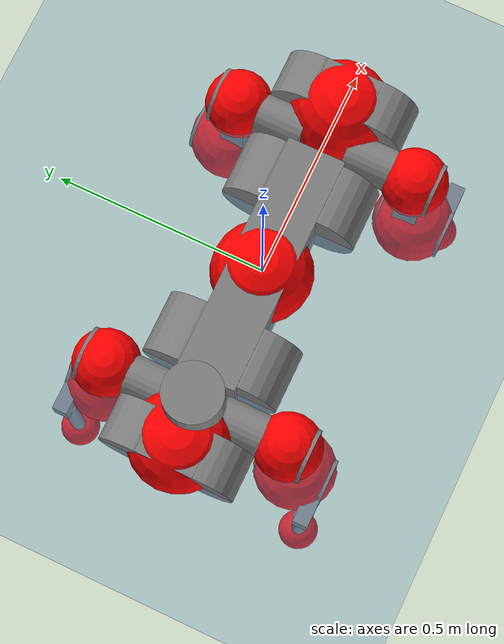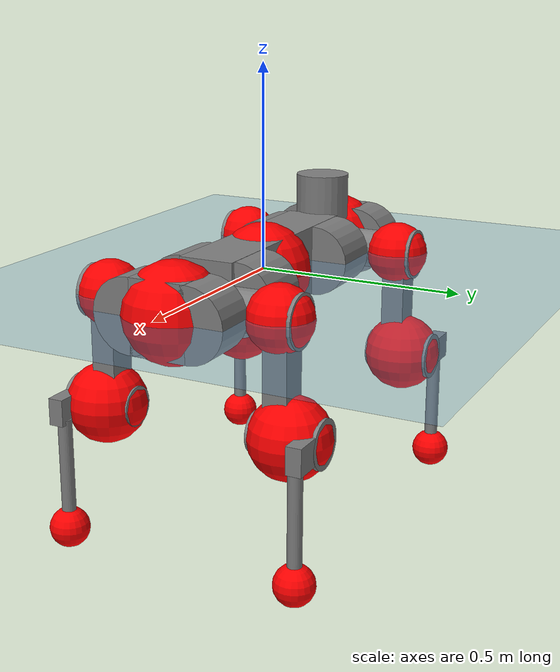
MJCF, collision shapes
<mujoco model="anymal_c">
  <compiler angle="radian" assetdir="assets" balanceinertia="true" inertiafromgeom="false"/>

  <option timestep="0.005" density="1.2" viscosity="2e-05"/>

  <size nkey="1"/>

  <visual>
    <quality shadowsize="8192"/>
    <map shadowclip="0.5"/>
  </visual>

  <default>
    <default class="/">
      <material specular="0" shininess="0.25"/>
      <geom contype="0" conaffinity="0" group="1" solref="-1000 -80"/>
      <site size="0.01 0.005 0.005" group="5"/>
      <general forcelimited="true" forcerange="-80 80" biastype="affine" gainprm="80" biasprm="0 -80 -2"/>
      <default class="anymal_c">
        <joint armature="0.01" damping="0.01" frictionloss="0.1"/>
        <default class="visual">
          <geom type="mesh" group="2"/>
          <default class="visual_zflip"/>
        </default>
        <default class="collision">
          <geom type="cylinder" group="3"/>
          <default class="foot">
            <geom size="0.03 0 0" type="sphere" condim="6" priority="1" friction="0.8 0.02 0.01" solimp="0.015 1 0.03"/>
          </default>
        </default>
      </default>
      <default class="reward_collision_sphere">
        <geom group="5" rgba="1 0 0 1"/>
      </default>
    </default>
  </default>

  <asset>
    <texture type="skybox" colorspace="auto" name="//unnamed_texture_0" builtin="gradient" rgb1="0.95 0.95 0.95" rgb2="0.95 0.95 0.95" width="100" height="600"/>
    <texture type="2d" colorspace="auto" name="texplane" builtin="checker" rgb1="0.345 0.575 0.748" rgb2="0.345 0.575 0.748" markrgb="1 1 1" width="512" height="512"/>
    <texture type="2d" colorspace="linear" name="base" file="base.png"/>
    <texture type="2d" colorspace="linear" name="top_shell" file="top_shell.png"/>
    <texture type="2d" colorspace="linear" name="bottom_shell" file="bottom_shell.png"/>
    <texture type="2d" colorspace="linear" name="remote" file="remote.png"/>
    <texture type="2d" colorspace="linear" name="hatch" file="hatch.png"/>
    <texture type="2d" colorspace="linear" name="handle" file="handle.png"/>
    <texture type="2d" colorspace="linear" name="face" file="face.png"/>
    <texture type="2d" colorspace="linear" name="battery" file="battery.png"/>
    <texture type="2d" colorspace="linear" name="lidar_cage" file="lidar_cage.png"/>
    <texture type="2d" colorspace="linear" name="depth_camera" file="depth_camera.png"/>
    <texture type="2d" colorspace="linear" name="wide_angle_camera" file="wide_angle_camera.png"/>
    <texture type="2d" colorspace="linear" name="lidar" file="lidar.png"/>
    <texture type="2d" colorspace="linear" name="drive" file="drive.png"/>
    <texture type="2d" colorspace="linear" name="hip_l" file="hip_l.png"/>
    <texture type="2d" colorspace="linear" name="shank_l" file="shank_l.png"/>
    <texture type="2d" colorspace="linear" name="foot" file="foot.png"/>
    <texture type="2d" colorspace="linear" name="thigh" file="thigh.png"/>
    <texture type="2d" colorspace="linear" name="shank_r" file="shank_r.png"/>
    <texture type="2d" colorspace="linear" name="hip_r" file="hip_r.png"/>
    <material name="MatPlane" class="/" texture="texplane" texuniform="true" texrepeat="2 2" specular="0.9" shininess="0.5"/>
    <material name="black_plastic" class="/" rgba="0.007 0.007 0.007 1"/>
    <material name="green" class="/" rgba="0.052 0.178 0.033 1"/>
    <material name="red" class="/" rgba="0.178 0.006 0.005 1"/>
    <material name="yellow" class="/" rgba="0.178 0.119 0.006 1"/>
    <material name="lwl" class="/" rgba="0.8 0.8 0.8 1"/>
    <material name="base" class="/" texture="base"/>
    <material name="top_shell" class="/" texture="top_shell"/>
    <material name="bottom_shell" class="/" texture="bottom_shell"/>
    <material name="hip_l" class="/" texture="hip_l"/>
    <material name="thigh" class="/" texture="thigh"/>
    <material name="shank_l" class="/" texture="shank_l"/>
    <material name="foot" class="/" texture="foot"/>
    <material name="hip_r" class="/" texture="hip_r"/>
    <material name="shank" class="/" texture="shank_r"/>
    <material name="hatch" class="/" texture="hatch"/>
    <material name="remote" class="/" texture="remote"/>
    <material name="handle" class="/" texture="handle"/>
    <material name="face" class="/" texture="face"/>
    <material name="depth_camera" class="/" texture="depth_camera"/>
    <material name="wide_angle_camera" class="/" texture="wide_angle_camera"/>
    <material name="battery" class="/" texture="battery"/>
    <material name="lidar_cage" class="/" texture="lidar_cage"/>
    <material name="lidar" class="/" texture="lidar"/>
    <material name="drive" class="/" texture="drive"/>
    <mesh name="base_0" class="/" file="base_0.obj"/>
    <mesh name="base_1" class="/" file="base_1.obj"/>
    <mesh name="base_2" class="/" file="base_2.obj"/>
    <mesh name="base_3" class="/" file="base_3.obj"/>
    <mesh name="base_4" class="/" file="base_4.obj"/>
    <mesh name="base_5" class="/" file="base_5.obj"/>
    <mesh name="top_shell" class="/" file="top_shell.obj"/>
    <mesh name="bottom_shell" class="/" file="bottom_shell.obj"/>
    <mesh name="remote" class="/" file="remote.obj"/>
    <mesh name="handle" class="/" file="handle.obj"/>
    <mesh name="face" class="/" file="face.obj"/>
    <mesh name="wide_angle_camera" class="/" file="wide_angle_camera.obj"/>
    <mesh name="depth_camera" class="/" file="depth_camera.obj"/>
    <mesh name="battery" class="/" file="battery.obj"/>
    <mesh name="lidar_cage" class="/" file="lidar_cage.obj"/>
    <mesh name="lidar" class="/" file="lidar.obj"/>
    <mesh name="drive" class="/" file="drive.obj"/>
    <mesh name="hip_l" class="/" file="hip_l.obj"/>
    <mesh name="thigh" class="/" file="thigh.obj"/>
    <mesh name="shank_l" class="/" file="shank_l.obj"/>
    <mesh name="foot" class="/" file="foot.obj"/>
    <mesh name="hip_r" class="/" file="hip_r.obj"/>
    <mesh name="hatch" class="/" file="hatch.obj"/>
    <mesh name="shank_r" class="/" file="shank_r.obj"/>
  </asset>

  <worldbody>
    <geom name="floor" class="/" size="100 100 0.125" type="plane" group="0" material="MatPlane"/>
    <light name="toplight_shadow" class="/" pos="0 0 5" dir="0.0990148 0.0990148 -0.990148" type="directional" ambient="0.04 0.04 0.04" diffuse="0.55 0.55 0.55" specular="0.12 0.12 0.12"/>
    <light name="toplight_fill" class="/" pos="0 0 5" dir="0.0990148 0.0990148 -0.990148" type="directional" castshadow="false" ambient="0.04 0.04 0.04" diffuse="0.3 0.3 0.3" specular="0.08 0.08 0.08"/>
    <body name="trunk" childclass="anymal_c" pos="-0.00240713 0.000127939 -0.00250641" quat="1 0.000360181 -0.000452987 -0.000199367">
      <inertial pos="0.0040798 0.00224824 0.0436139" quat="0.505779 0.5027 0.494148 0.49729" mass="18.825" diaginertia="0.446366 0.82012 0.174025"/>
      <joint name="//unnamed_joint_0" type="free" armature="0" damping="0" frictionloss="0"/>
      <geom name="//unnamed_geom_1" class="visual" material="green" mesh="base_0"/>
      <geom name="//unnamed_geom_2" class="visual" material="yellow" mesh="base_1"/>
      <geom name="//unnamed_geom_3" class="visual" material="red" mesh="base_2"/>
      <geom name="//unnamed_geom_4" class="visual" material="black_plastic" mesh="base_3"/>
      <geom name="//unnamed_geom_5" class="visual" material="lwl" mesh="base_4"/>
      <geom name="//unnamed_geom_6" class="visual" material="base" mesh="base_5"/>
      <geom name="trunk_1" class="collision" size="0.282735 0.0682463 0.0877452" type="box"/>
      <geom name="trunk_2" class="collision" size="0.0877452 0.0706836" pos="0.201567 0.0736431 0" quat="0.707107 0 0.707107 0"/>
      <geom name="trunk_3" class="collision" size="0.0877452 0.0706836" pos="-0.201567 0.0736431 0" quat="0.707107 0 0.707107 0"/>
      <geom name="trunk_4" class="collision" size="0.0877452 0.0706836" pos="0.201567 -0.0736431 0" quat="0.707107 0 0.707107 0"/>
      <geom name="trunk_5" class="collision" size="0.0877452 0.0706836" pos="-0.201567 -0.0736431 0" quat="0.707107 0 0.707107 0"/>
      <geom name="//unnamed_geom_12" class="visual" material="top_shell" mesh="top_shell"/>
      <geom name="//unnamed_geom_13" class="visual" material="bottom_shell" mesh="bottom_shell"/>
      <geom name="//unnamed_geom_14" class="visual" material="remote" mesh="remote"/>
      <geom name="//unnamed_geom_15" class="visual" material="handle" mesh="handle"/>
      <geom name="//unnamed_geom_16" class="visual" pos="0.384137 0 0" quat="1 0 0 0" material="face" mesh="face"/>
      <geom name="trunk_6" class="collision" size="0.0536221 0.0682463 0.0877452" pos="0.435108 0 0" type="box"/>
      <geom name="//unnamed_geom_18" class="collision" size="0.0877452 0.0536221" pos="0.435108 0.0736431 0" quat="0.707107 0 0.707107 0"/>
      <geom name="//unnamed_geom_19" class="collision" size="0.0877452 0.0536221" pos="0.435108 -0.0736431 0" quat="0.707107 0 0.707107 0"/>
      <geom name="//unnamed_geom_20" class="visual" pos="0.427833 0 -0.0277713" quat="0.965926 0 0.258819 0" material="depth_camera" mesh="depth_camera"/>
      <geom name="//unnamed_geom_21" class="visual" pos="0.475421 0 0.0141624" material="wide_angle_camera" mesh="wide_angle_camera"/>
      <geom name="//unnamed_geom_22" class="visual_zflip" pos="-0.384137 0 0" quat="0 0 0 1" material="face" mesh="face"/>
      <geom name="trunk_7" class="collision" size="0.0536221 0.0682463 0.0877452" pos="-0.435108 0 0" quat="0 0 0 1" type="box"/>
      <geom name="//unnamed_geom_24" class="collision" size="0.0877452 0.0536221" pos="-0.435108 -0.0736431 0" quat="0 -0.707107 0 0.707107"/>
      <geom name="//unnamed_geom_25" class="collision" size="0.0877452 0.0536221" pos="-0.435108 0.0736431 0" quat="0 -0.707107 0 0.707107"/>
      <geom name="//unnamed_geom_26" class="visual" pos="-0.427833 0 -0.0277713" quat="0 -0.258819 0 0.965926" material="depth_camera" mesh="depth_camera"/>
      <geom name="//unnamed_geom_27" class="visual_zflip" pos="-0.475421 0 0.0141624" quat="0 0 0 1" material="wide_angle_camera" mesh="wide_angle_camera"/>
      <geom name="//unnamed_geom_28" class="visual" material="battery" mesh="battery"/>
      <geom name="//unnamed_geom_29" class="visual" pos="0 0.0820843 0.027336" quat="0.683013 -0.183013 0.183013 0.683013" material="depth_camera" mesh="depth_camera"/>
      <geom name="//unnamed_geom_30" class="visual" pos="0 -0.0820843 0.027336" quat="0.683013 0.183013 0.183013 -0.683013" material="depth_camera" mesh="depth_camera"/>
      <geom name="//unnamed_geom_31" class="visual" pos="-0.337336 0 0.0695346" quat="1 0 0 0" material="lidar_cage" mesh="lidar_cage"/>
      <geom name="trunk_8" class="collision" size="0.0682463 0.0584968" pos="-0.337336 0 0.126298"/>
      <geom name="//unnamed_geom_33" class="visual" pos="-0.337336 4.92263e-05 0.134528" quat="0.707107 0 0 -0.707107" material="lidar" mesh="lidar"/>
      <geom name="//unnamed_geom_34" class="visual" pos="0.277931 0.109375 1.82844e-09" quat="0.258819 0.965926 0 0" material="drive" mesh="drive"/>
      <geom name="//unnamed_geom_35" class="visual" pos="0.277931 -0.109375 -1.82844e-09" quat="0.258819 -0.965926 0 0" material="drive" mesh="drive"/>
      <geom name="//unnamed_geom_36" class="visual" pos="-0.277931 0.109375 -1.82844e-09" quat="0 0 0.965926 -0.258819" material="drive" mesh="drive"/>
      <geom name="//unnamed_geom_37" class="visual" pos="-0.277931 -0.109375 1.82844e-09" quat="0 0 -0.965926 -0.258819" material="drive" mesh="drive"/>
      <geom name="//unnamed_geom_38" class="visual" pos="0.107503 0 0.0690616" quat="1 0 0 0" material="hatch" mesh="hatch"/>
      <geom name="//unnamed_geom_39" class="reward_collision_sphere" size="0.116994"/>
      <geom name="//unnamed_geom_40" class="reward_collision_sphere" size="0.116994" pos="0.417036 0 0"/>
      <geom name="//unnamed_geom_41" class="reward_collision_sphere" size="0.116994" pos="-0.417036 0 0"/>
      <site name="imu" pos="0.229966 0.0197034 0.0394043" size="0.00974947"/>
      <camera name="track" pos="0 -2.10409 0" quat="0.707107 0.707107 0 0" mode="trackcom"/>
      <camera name="ego_camera" pos="0.417036 0 -0.037842" quat="-0.5 -0.5 0.5 0.5"/>
      <body name="LF_HIP" pos="0.278228 0.107402 0.00183332" quat="0.258297 0.966065 -0.000632441 0.00105289">
        <inertial pos="0.0549684 -0.0168551 -0.00885138" quat="-0.126805 0.709914 -0.133283 0.679837" mass="2.56333" diaginertia="0.00398394 0.00669819 0.00249697"/>
        <joint name="LF_HAA" pos="0 0 0" axis="0.999946 -0.0103975 -0.000605944" range="-0.759386 0.469574" armature="0.00988726" damping="0.0226054" frictionloss="0.0988442"/>
        <geom name="//unnamed_geom_42" class="visual" pos="0 0.000107559 -1.76665e-05" quat="0.258819 -0.965926 0 0" material="hip_l" mesh="hip_l"/>
        <geom name="//unnamed_geom_43" class="visual" pos="0.0555121 -0.0688768 -0.038982" quat="0.183013 -0.683013 0.683013 0.183013" material="drive" mesh="drive"/>
        <geom name="//unnamed_geom_44" class="collision" size="0.0487473 0.0682463" pos="0.0555121 -0.0125822 -0.00653247" quat="-0.353553 -0.612372 0.612372 -0.353553"/>
        <body name="LF_THIGH" pos="0.0582252 -0.077466 -0.0371115" quat="0.182983 -0.683038 0.682991 0.183033">
          <inertial pos="0.0297562 -0.00155381 -0.231376" quat="0.99316 -0.00522567 -0.0806024 0.0843215" mass="2.82135" diaginertia="0.0210504 0.0380332 0.00302492"/>
          <joint name="LF_HFE" pos="0 0 0" axis="0.999944 -0.00752478 0.00739544" stiffness="0.0132813" range="-3.09546 3.13065" armature="0.00848502" damping="0.00301966" frictionloss="0.0842722"/>
          <geom name="//unnamed_geom_45" class="visual" pos="-0.00249294 -3.92829e-06 0" quat="0.707107 0 0 -0.707107" material="thigh" mesh="thigh"/>
          <geom name="//unnamed_geom_46" class="collision" size="0.0633715 0.0389979" pos="0.0370699 0 0" quat="0.5 0.5 -0.5 -0.5"/>
          <geom name="//unnamed_geom_47" class="collision" size="0.0365605 0.0292484 0.137774" pos="0.0278024 0 -0.13369" quat="0.707107 0 0 -0.707107" type="box"/>
          <geom name="//unnamed_geom_48" class="visual" pos="0.0929527 0 -0.269624" quat="1 0 0 0" material="drive" mesh="drive"/>
          <geom name="//unnamed_geom_49" class="collision" size="0.0487473 0.0682463" pos="0.0280804 0 -0.269624" quat="0.707107 0 0.707107 0"/>
          <geom name="//unnamed_geom_50" class="reward_collision_sphere" size="0.0779957" pos="0.0231687 0 0"/>
          <body name="LF_SHANK" pos="0.0942894 0.00097258 -0.269848" quat="1 -0.000515974 0.000405595 -0.000621394">
            <inertial pos="0.00492388 -0.0638694 -0.0749088" quat="0.992643 -0.120401 -0.00174402 -0.0126537" mass="0.54338" diaginertia="0.00655021 0.0117354 0.000846597"/>
            <joint name="LF_KFE" pos="0 0 0" axis="0.999911 -0.00191109 -0.013196" stiffness="0.00652608" range="-3.11837 3.13102" armature="0.0107965" damping="0.00599495" frictionloss="0.10863"/>
            <geom name="//unnamed_geom_51" class="visual" pos="-0.000812894 -0.00433439 0" quat="0.707107 0 0 -0.707107" material="shank_l" mesh="shank_l"/>
            <geom name="LF_kfe_act" class="collision" size="0.0584968 0.0194989" pos="0.0185349 0 0" quat="0.5 0.5 -0.5 -0.5"/>
            <geom name="//unnamed_geom_53" class="collision" size="0.0560585 0.0329045 0.018524" pos="0.0185349 -0.0604915 0" quat="0.5 0.5 -0.5 -0.5" type="box"/>
            <geom name="//unnamed_geom_54" class="visual" pos="0.0120942 -0.0939241 -0.319736" quat="0.382683 0 0 -0.92388" material="foot" mesh="foot"/>
            <geom name="LF_calf" class="collision" size="0.0170616 0.137713" pos="0.012094 -0.0925273 -0.159868" quat="0.707107 0 0 -0.707107"/>
            <geom name="LF_foot" class="foot" size="0.0232811" pos="0.012094 -0.0925273 -0.29845" quat="0.707107 0 0 -0.707107"/>
            <geom name="//unnamed_geom_57" class="reward_collision_sphere" size="0.0974947" pos="-0.0463373 0 0"/>
            <geom name="//unnamed_geom_58" class="reward_collision_sphere" size="0.0487473" pos="0.012094 -0.0925273 -0.29845"/>
            <site name="LF_foot" class="foot" pos="0.012094 -0.0925273 -0.29845" quat="0.707107 0 0 -0.707107" size="0.00974947"/>
          </body>
        </body>
      </body>
      <body name="RF_HIP" pos="0.28006 -0.108699 0.00134088" quat="0.258859 -0.965915 -0.000161874 0.000263324">
        <inertial pos="0.0549681 0.0168232 -0.00801024" quat="0.135242 0.679094 0.128022 0.710036" mass="2.59042" diaginertia="0.00386196 0.00616443 0.00238011"/>
        <joint name="RF_HAA" pos="0 0 0" axis="0.999949 -0.00108545 0.0100069" range="-0.439617 0.729014" armature="0.0109287" damping="0.0108154" frictionloss="0.0982802"/>
        <geom name="//unnamed_geom_59" class="visual" pos="0 -0.000107558 -1.76664e-05" quat="0.258819 0.965926 0 0" material="hip_r" mesh="hip_r"/>
        <geom name="//unnamed_geom_60" class="visual" pos="0.0555121 0.0688768 -0.038982" quat="0.183013 0.683013 0.683013 -0.183013" material="drive" mesh="drive"/>
        <geom name="//unnamed_geom_61" class="collision" size="0.0487473 0.0682463" pos="0.0555121 0.0125822 -0.00653247" quat="-0.353553 0.612372 0.612372 0.353553"/>
        <body name="RF_THIGH" pos="0.0556291 0.0787142 -0.0403604" quat="0.183053 0.683115 0.683013 -0.182588">
          <inertial pos="0.030778 -0.000677104 -0.232472" quat="0.993185 -0.00616439 -0.083134 0.0814565" mass="2.81851" diaginertia="0.0199723 0.036078 0.00307398"/>
          <joint name="RF_HFE" pos="0 0 0" axis="0.999971 0.00578131 -0.00491388" range="-3.16727 3.14561" armature="0.00965492" damping="0.00249968" frictionloss="0.110212"/>
          <geom name="//unnamed_geom_62" class="visual" pos="-0.00249294 -3.92829e-06 0" quat="0.707107 0 0 -0.707107" material="thigh" mesh="thigh"/>
          <geom name="//unnamed_geom_63" class="collision" size="0.0633715 0.0389979" pos="0.0370699 0 0" quat="0.5 0.5 0.5 0.5"/>
          <geom name="//unnamed_geom_64" class="collision" size="0.0365605 0.0292484 0.137774" pos="0.0278024 0 -0.13369" quat="0.707107 0 0 0.707107" type="box"/>
          <geom name="//unnamed_geom_65" class="visual" pos="0.0929527 0 -0.269624" quat="1 0 0 0" material="drive" mesh="drive"/>
          <geom name="//unnamed_geom_66" class="collision" size="0.0487473 0.0682463" pos="0.0280804 0 -0.269624" quat="0.707107 0 0.707107 0"/>
          <geom name="//unnamed_geom_67" class="reward_collision_sphere" size="0.0779957" pos="0.0231687 0 0"/>
          <body name="RF_SHANK" pos="0.0916534 -0.000253057 -0.272568" quat="1 5.74872e-06 9.93218e-05 3.28439e-05">
            <inertial pos="0.00567622 0.0641556 -0.076986" quat="0.99301 0.115567 -0.00419304 0.0236041" mass="0.549852" diaginertia="0.00691257 0.0118837 0.00083776"/>
            <joint name="RF_KFE" pos="0 0 0" axis="0.99996 -0.00757416 0.00465929" range="-3.12469 3.16175" armature="0.00842347" damping="0.0110143" frictionloss="0.0843375"/>
            <geom name="//unnamed_geom_68" class="visual" pos="-0.000812889 0.00433438 0" quat="0.707107 0 0 0.707107" material="shank" mesh="shank_r"/>
            <geom name="RF_kfe_act" class="collision" size="0.0584968 0.0194989" pos="0.0185349 0 0" quat="0.5 0.5 0.5 0.5"/>
            <geom name="//unnamed_geom_70" class="collision" size="0.0560585 0.0329045 0.018524" pos="0.0185349 0.0604915 0" quat="0.5 0.5 0.5 0.5" type="box"/>
            <geom name="//unnamed_geom_71" class="visual" pos="0.0120938 0.0939241 -0.319736" quat="0.382683 0 0 0.92388" material="foot" mesh="foot"/>
            <geom name="RF_calf" class="collision" size="0.0170616 0.137713" pos="0.012094 0.0925273 -0.159868" quat="0.707107 0 0 0.707107"/>
            <geom name="RF_foot" class="foot" size="0.0244598" pos="0.012094 0.0925273 -0.29845" quat="0.707107 0 0 0.707107"/>
            <geom name="//unnamed_geom_74" class="reward_collision_sphere" size="0.0974947" pos="-0.0463373 0 0"/>
            <geom name="//unnamed_geom_75" class="reward_collision_sphere" size="0.0487473" pos="0.012094 0.0925273 -0.29845"/>
            <site name="RF_foot" class="foot" pos="0.012094 0.0925273 -0.29845" quat="0.707107 0 0 0.707107" size="0.00974947"/>
          </body>
        </body>
      </body>
      <body name="LH_HIP" pos="-0.27656 0.10991 -0.000685472" quat="0.000542446 0.000299124 0.965793 -0.259314">
        <inertial pos="0.0553857 0.0143699 -0.00877444" quat="0.130009 0.681141 0.115698 0.711167" mass="2.59708" diaginertia="0.00412332 0.00658229 0.0025284"/>
        <joint name="LH_HAA" pos="0 0 0" axis="0.999983 0.00485896 -0.00321704" stiffness="0.00418537" range="-0.52062 0.68406" armature="0.0096864" damping="0" frictionloss="0.0941035"/>
        <geom name="//unnamed_geom_76" class="visual" pos="0 -0.000107558 -1.76664e-05" quat="-0.258819 -0.965926 0 0" material="hip_r" mesh="hip_r"/>
        <geom name="//unnamed_geom_77" class="visual" pos="0.0555121 0.0688768 -0.038982" quat="0.183013 0.683013 0.683013 -0.183013" material="drive" mesh="drive"/>
        <geom name="//unnamed_geom_78" class="collision" size="0.0487473 0.0682463" pos="0.0555121 0.0125822 -0.00653247" quat="-0.353553 0.612372 0.612372 0.353553"/>
        <body name="LH_THIGH" pos="0.0538776 0.0769758 -0.0404977" quat="0.183808 0.683134 0.682585 -0.183358">
          <inertial pos="0.0288059 -0.000562191 -0.230584" quat="0.992626 -0.0134909 -0.0887105 0.0815003" mass="2.87245" diaginertia="0.0211531 0.0405234 0.00333269"/>
          <joint name="LH_HFE" pos="0 0 0" axis="0.999973 -0.00700124 0.00239556" stiffness="9.1894e-05" range="-3.15182 3.13702" armature="0.010069" damping="0" frictionloss="0.0963098"/>
          <geom name="//unnamed_geom_79" class="visual" pos="-0.00249294 -3.92829e-06 0" quat="0.707107 0 0 -0.707107" material="thigh" mesh="thigh"/>
          <geom name="//unnamed_geom_80" class="collision" size="0.0633715 0.0389979" pos="0.0370699 0 0" quat="0.5 0.5 -0.5 -0.5"/>
          <geom name="//unnamed_geom_81" class="collision" size="0.0365605 0.0292484 0.137774" pos="0.0278024 0 -0.13369" quat="0.707107 0 0 -0.707107" type="box"/>
          <geom name="//unnamed_geom_82" class="visual" pos="0.0929527 0 -0.269624" quat="1 0 0 0" material="drive" mesh="drive"/>
          <geom name="//unnamed_geom_83" class="collision" size="0.0487473 0.0682463" pos="0.0280804 0 -0.269624" quat="0.707107 0 0.707107 0"/>
          <geom name="//unnamed_geom_84" class="reward_collision_sphere" size="0.0779957" pos="0.0231687 0 0"/>
          <body name="LH_SHANK" pos="0.0931509 -0.00198412 -0.268469" quat="1 -0.0006361 0.000182189 0.000153174">
            <inertial pos="0.00231021 0.0623459 -0.076491" quat="0.993098 0.112749 0.00818514 0.0312632" mass="0.562496" diaginertia="0.00698742 0.0122465 0.000900775"/>
            <joint name="LH_KFE" pos="0 0 0" axis="0.999984 0.00134391 -0.00547557" stiffness="0.0104477" range="-3.15257 3.19136" armature="0.0106906" damping="0.000364881" frictionloss="0.0886939"/>
            <geom name="//unnamed_geom_85" class="visual" pos="-0.000812889 0.00433438 0" quat="-0.707107 0 0 -0.707107" material="shank" mesh="shank_r"/>
            <geom name="LH_kfe_act" class="collision" size="0.0584968 0.0194989" pos="0.0185349 0 0" quat="0.5 0.5 -0.5 -0.5"/>
            <geom name="//unnamed_geom_87" class="collision" size="0.0560585 0.0329045 0.018524" pos="0.0185349 0.0604915 0" quat="0.5 0.5 -0.5 -0.5" type="box"/>
            <geom name="//unnamed_geom_88" class="visual" pos="0.0120938 0.0939241 -0.319736" quat="-0.382683 0 0 -0.92388" material="foot" mesh="foot"/>
            <geom name="LH_calf" class="collision" size="0.0170616 0.137713" pos="0.012094 0.0925273 -0.159868" quat="0.707107 0 0 -0.707107"/>
            <geom name="LH_foot" class="foot" size="0.0289151" pos="0.012094 0.0925273 -0.29845" quat="0.707107 0 0 -0.707107"/>
            <geom name="//unnamed_geom_91" class="reward_collision_sphere" size="0.0974947" pos="-0.0463373 0 0"/>
            <geom name="//unnamed_geom_92" class="reward_collision_sphere" size="0.0487473" pos="0.012094 0.0925273 -0.29845"/>
            <site name="LH_foot" class="foot" pos="0.012094 0.0925273 -0.29845" quat="0.707107 0 0 -0.707107" size="0.00974947"/>
          </body>
        </body>
      </body>
      <body name="RH_HIP" pos="-0.275292 -0.111188 0.00158755" quat="0.000648337 0.000324517 -0.966015 -0.258487">
        <inertial pos="0.0506334 -0.0152789 -0.00613547" quat="-0.126571 0.713674 -0.136871 0.675215" mass="2.58713" diaginertia="0.00406419 0.00642409 0.00249459"/>
        <joint name="RH_HAA" pos="0 0 0" axis="0.999943 0.00955241 0.00476575" stiffness="0.0033496" range="-0.669346 0.524605" armature="0.00842742" damping="0.00750455" frictionloss="0.10651"/>
        <geom name="//unnamed_geom_93" class="visual" pos="0 0.000107559 -1.76665e-05" quat="-0.258819 0.965926 0 0" material="hip_l" mesh="hip_l"/>
        <geom name="//unnamed_geom_94" class="visual" pos="0.0555121 -0.0688768 -0.038982" quat="-0.183013 0.683013 -0.683013 -0.183013" material="drive" mesh="drive"/>
        <geom name="//unnamed_geom_95" class="collision" size="0.0487473 0.0682463" pos="0.0555121 -0.0125822 -0.00653247" quat="0.353553 0.612372 -0.612372 0.353553"/>
        <body name="RH_THIGH" pos="0.053012 -0.0747474 -0.0379557" quat="-0.182973 0.683116 -0.682927 -0.182986">
          <inertial pos="0.0280937 -0.000382395 -0.232006" quat="0.993246 -0.00877475 -0.0812681 0.0823438" mass="2.84588" diaginertia="0.0202108 0.0391497 0.00316146"/>
          <joint name="RH_HFE" pos="0 0 0" axis="0.999955 -0.00859175 0.00402761" stiffness="0.00896557" range="-3.13312 3.13616" armature="0.00951973" damping="0.00260932" frictionloss="0.106722"/>
          <geom name="//unnamed_geom_96" class="visual" pos="-0.00249294 -3.92829e-06 0" quat="0.707107 0 0 -0.707107" material="thigh" mesh="thigh"/>
          <geom name="//unnamed_geom_97" class="collision" size="0.0633715 0.0389979" pos="0.0370699 0 0" quat="0.5 0.5 0.5 0.5"/>
          <geom name="//unnamed_geom_98" class="collision" size="0.0365605 0.0292484 0.137774" pos="0.0278024 0 -0.13369" quat="0.707107 0 0 0.707107" type="box"/>
          <geom name="//unnamed_geom_99" class="visual" pos="0.0929527 0 -0.269624" quat="1 0 0 0" material="drive" mesh="drive"/>
          <geom name="//unnamed_geom_100" class="collision" size="0.0487473 0.0682463" pos="0.0280804 0 -0.269624" quat="0.707107 0 0.707107 0"/>
          <geom name="//unnamed_geom_101" class="reward_collision_sphere" size="0.0779957" pos="0.0231687 0 0"/>
          <body name="RH_SHANK" pos="0.0921414 0.000631789 -0.266082" quat="1 -0.000316422 -0.00010781 -1.34773e-05">
            <inertial pos="0.00414471 -0.06311 -0.0754344" quat="0.992519 -0.120827 -0.00544063 -0.0166614" mass="0.544067" diaginertia="0.00716071 0.0117283 0.000847017"/>
            <joint name="RH_KFE" pos="0 0 0" axis="0.999996 0.00204274 0.00195411" stiffness="0.00253965" range="-3.1705 3.15013" armature="0.00848376" damping="0.00590674" frictionloss="0.085182"/>
            <geom name="//unnamed_geom_102" class="visual" pos="-0.000812894 -0.00433439 0" quat="0.707107 0 0 -0.707107" material="shank_l" mesh="shank_l"/>
            <geom name="RH_kfe_act" class="collision" size="0.0584968 0.0194989" pos="0.0185349 0 0" quat="0.5 0.5 0.5 0.5"/>
            <geom name="//unnamed_geom_104" class="collision" size="0.0560585 0.0329045 0.018524" pos="0.0185349 -0.0604915 0" quat="0.5 0.5 0.5 0.5" type="box"/>
            <geom name="//unnamed_geom_105" class="visual" pos="0.0120942 -0.0939241 -0.319736" quat="0.382683 0 0 -0.92388" material="foot" mesh="foot"/>
            <geom name="RH_calf" class="collision" size="0.0170616 0.137713" pos="0.012094 -0.0925273 -0.159868" quat="0.707107 0 0 0.707107"/>
            <geom name="RH_foot" class="foot" size="0.0301661" pos="0.012094 -0.0925273 -0.29845" quat="0.707107 0 0 0.707107"/>
            <geom name="//unnamed_geom_108" class="reward_collision_sphere" size="0.0974947" pos="-0.0463373 0 0"/>
            <geom name="//unnamed_geom_109" class="reward_collision_sphere" size="0.0487473" pos="0.012094 -0.0925273 -0.29845"/>
            <site name="RH_foot" class="foot" pos="0.012094 -0.0925273 -0.29845" quat="0.707107 0 0 0.707107" size="0.00974947"/>
          </body>
        </body>
      </body>
    </body>
  </worldbody>

  <contact>
    <pair class="/" geom1="floor" geom2="LF_foot" name="//unnamed_contact_0"/>
    <pair class="/" geom1="floor" geom2="RF_foot" name="//unnamed_contact_1"/>
    <pair class="/" geom1="floor" geom2="LH_foot" name="//unnamed_contact_2"/>
    <pair class="/" geom1="floor" geom2="RH_foot" name="//unnamed_contact_3"/>
  </contact>

  <actuator>
    <general name="LF_HAA" class="/" joint="LF_HAA" forcerange="-80.0885 80.0885" gainprm="82.5577" biasprm="0 -82.5577 -2.02361"/>
    <general name="LF_HFE" class="/" joint="LF_HFE" forcerange="-71.324 71.324" gainprm="82.5577" biasprm="0 -82.5577 -2.02361"/>
    <general name="LF_KFE" class="/" joint="LF_KFE" forcerange="-77.0068 77.0068" gainprm="82.5577" biasprm="0 -82.5577 -2.02361"/>
    <general name="RF_HAA" class="/" joint="RF_HAA" forcerange="-81.3021 81.3021" gainprm="82.5577" biasprm="0 -82.5577 -2.02361"/>
    <general name="RF_HFE" class="/" joint="RF_HFE" forcerange="-86.1926 86.1926" gainprm="82.5577" biasprm="0 -82.5577 -2.02361"/>
    <general name="RF_KFE" class="/" joint="RF_KFE" forcerange="-78.5684 78.5684" gainprm="82.5577" biasprm="0 -82.5577 -2.02361"/>
    <general name="LH_HAA" class="/" joint="LH_HAA" forcerange="-73.3867 73.3867" gainprm="82.5577" biasprm="0 -82.5577 -2.02361"/>
    <general name="LH_HFE" class="/" joint="LH_HFE" forcerange="-71.5584 71.5584" gainprm="82.5577" biasprm="0 -82.5577 -2.02361"/>
    <general name="LH_KFE" class="/" joint="LH_KFE" forcerange="-82.5331 82.5331" gainprm="82.5577" biasprm="0 -82.5577 -2.02361"/>
    <general name="RH_HAA" class="/" joint="RH_HAA" forcerange="-74.1896 74.1896" gainprm="82.5577" biasprm="0 -82.5577 -2.02361"/>
    <general name="RH_HFE" class="/" joint="RH_HFE" forcerange="-74.5319 74.5319" gainprm="82.5577" biasprm="0 -82.5577 -2.02361"/>
    <general name="RH_KFE" class="/" joint="RH_KFE" forcerange="-81.7822 81.7822" gainprm="82.5577" biasprm="0 -82.5577 -2.02361"/>
  </actuator>

  <sensor>
    <gyro site="imu" name="imu_angular_velocity"/>
    <velocimeter site="imu" name="imu_linear_velocity"/>
    <framelinvel objtype="site" objname="LF_foot" name="LF_foot_global_linear_velocity"/>
    <framelinvel objtype="site" objname="RF_foot" name="RF_foot_global_linear_velocity"/>
    <framelinvel objtype="site" objname="LH_foot" name="LH_foot_global_linear_velocity"/>
    <framelinvel objtype="site" objname="RH_foot" name="RH_foot_global_linear_velocity"/>
  </sensor>

  <keyframe>
    <key name="home" qpos="0 0 0.55 1 0 0 0 0 0.4 -0.8 0 -0.4 0.8 0 -0.4 0.8 0 0.4 -0.8"/>
  </keyframe>
</mujoco>
